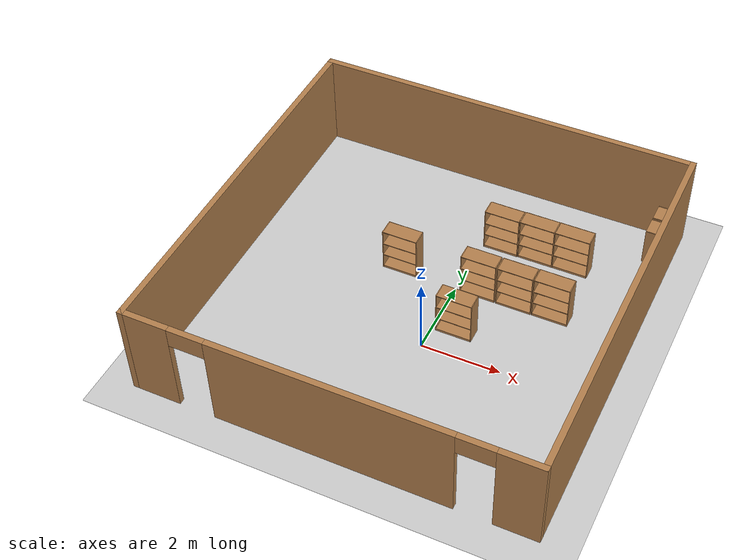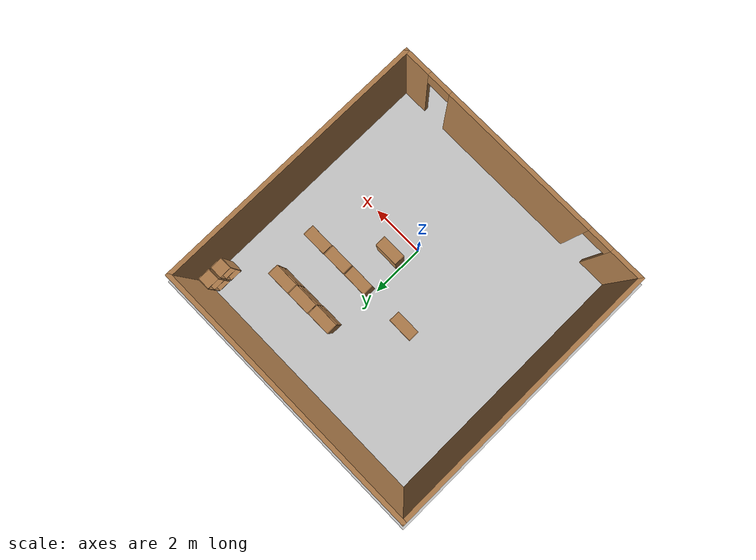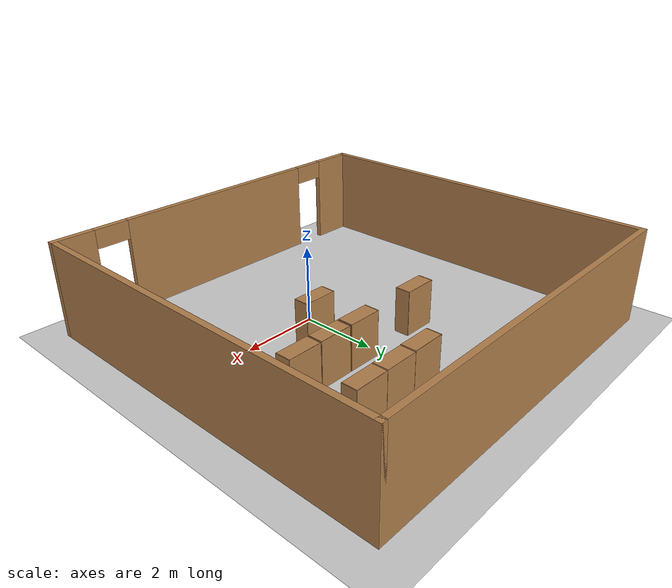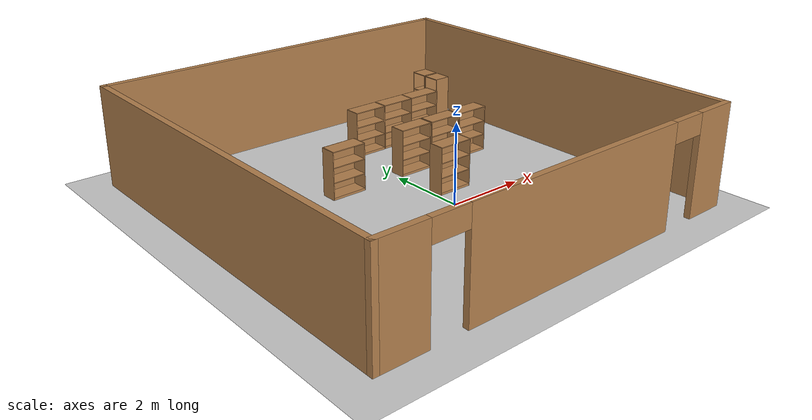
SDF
<sdf version="1.7">
 <world name="default">
  <model name="ground_plane">
   <static>1</static>
   <link name="link">
    <collision name="collision">
     <geometry><plane><normal>0 0 1</normal><size>100 100</size></plane></geometry>
     <surface>
      <contact><collide_bitmask>65535</collide_bitmask></contact>
      <friction><ode><mu>100</mu><mu2>50</mu2></ode></friction>
     </surface>
    </collision>
    <visual name="visual">
     <cast_shadows>0</cast_shadows>
     <geometry><plane><normal>0 0 1</normal><size>100 100</size></plane></geometry>
     <material>
      <script><uri>file://media/materials/scripts/gazebo.material</uri><name>Gazebo/Grey</name></script>
     </material>
    </visual>
   </link>
  </model>
  <model name="test">
   <pose>-0.47841 1.11325 0 0 -0 0</pose>
   <link name="Wall_13">
    <collision name="Wall_13_Collision">
     <geometry><box><size>10 0.15 2.5</size></box></geometry>
     <pose>0 0 1.25 0 -0 0</pose>
    </collision>
    <visual name="Wall_13_Visual">
     <pose>0 0 1.25 0 -0 0</pose>
     <geometry><box><size>10 0.15 2.5</size></box></geometry>
     <material>
      <script><uri>file://media/materials/scripts/gazebo.material</uri><name>Gazebo/Wood</name></script>
      <ambient>1 1 1 1</ambient>
     </material>
     <meta><layer>0</layer></meta>
    </visual>
    <pose>0 4.925 0 0 -0 0</pose>
   </link>
   <link name="Wall_14">
    <collision name="Wall_14_Collision">
     <geometry><box><size>10 0.15 2.5</size></box></geometry>
     <pose>0 0 1.25 0 -0 0</pose>
    </collision>
    <visual name="Wall_14_Visual">
     <pose>0 0 1.25 0 -0 0</pose>
     <geometry><box><size>10 0.15 2.5</size></box></geometry>
     <material>
      <script><uri>file://media/materials/scripts/gazebo.material</uri><name>Gazebo/Wood</name></script>
      <ambient>1 1 1 1</ambient>
     </material>
     <meta><layer>0</layer></meta>
    </visual>
    <pose>4.925 -0 0 0 -0 -1.5708</pose>
   </link>
   <link name="Wall_17">
    <collision name="Wall_17_Collision">
     <geometry><box><size>10 0.15 2.5</size></box></geometry>
     <pose>0 0 1.25 0 -0 0</pose>
    </collision>
    <visual name="Wall_17_Visual">
     <pose>0 0 1.25 0 -0 0</pose>
     <geometry><box><size>10 0.15 2.5</size></box></geometry>
     <material>
      <script><uri>file://media/materials/scripts/gazebo.material</uri><name>Gazebo/Wood</name></script>
      <ambient>1 1 1 1</ambient>
     </material>
     <meta><layer>0</layer></meta>
    </visual>
    <pose>-4.925 -0 0 0 -0 1.5708</pose>
   </link>
   <link name="Wall_5">
    <pose>0 -4.925 0 0 -0 3.14159</pose>
    <visual name="Wall_5_Visual_0">
     <pose>-4.45546 0 1.25 0 -0 0</pose>
     <geometry><box><size>1.08909 0.15 2.5</size></box></geometry>
     <material>
      <script><uri>file://media/materials/scripts/gazebo.material</uri><name>Gazebo/Wood</name></script>
      <ambient>1 1 1 1</ambient>
     </material>
     <meta><layer>0</layer></meta>
    </visual>
    <collision name="Wall_5_Collision_0">
     <geometry><box><size>1.08909 0.15 2.5</size></box></geometry>
     <pose>-4.45546 0 1.25 0 -0 0</pose>
    </collision>
    <visual name="Wall_5_Visual_1">
     <pose>-0.081777 0 1.25 0 -0 0</pose>
     <geometry><box><size>5.85827 0.15 2.5</size></box></geometry>
     <material>
      <script><uri>file://media/materials/scripts/gazebo.material</uri><name>Gazebo/Wood</name></script>
      <ambient>1 1 1 1</ambient>
     </material>
     <meta><layer>0</layer></meta>
    </visual>
    <collision name="Wall_5_Collision_1">
     <geometry><box><size>5.85827 0.15 2.5</size></box></geometry>
     <pose>-0.081777 0 1.25 0 -0 0</pose>
    </collision>
    <visual name="Wall_5_Visual_2">
     <pose>4.37368 0 1.25 0 -0 0</pose>
     <geometry><box><size>1.25264 0.15 2.5</size></box></geometry>
     <material>
      <script><uri>file://media/materials/scripts/gazebo.material</uri><name>Gazebo/Wood</name></script>
      <ambient>1 1 1 1</ambient>
     </material>
     <meta><layer>0</layer></meta>
    </visual>
    <collision name="Wall_5_Collision_2">
     <geometry><box><size>1.25264 0.15 2.5</size></box></geometry>
     <pose>4.37368 0 1.25 0 -0 0</pose>
    </collision>
    <visual name="Wall_5_Visual_3">
     <pose>-3.46091 0 2.25 0 -0 0</pose>
     <geometry><box><size>0.9 0.15 0.5</size></box></geometry>
     <material>
      <script><uri>file://media/materials/scripts/gazebo.material</uri><name>Gazebo/Wood</name></script>
      <ambient>1 1 1 1</ambient>
     </material>
     <meta><layer>0</layer></meta>
    </visual>
    <collision name="Wall_5_Collision_3">
     <geometry><box><size>0.9 0.15 0.5</size></box></geometry>
     <pose>-3.46091 0 2.25 0 -0 0</pose>
    </collision>
    <visual name="Wall_5_Visual_4">
     <pose>3.29736 0 2.25 0 -0 0</pose>
     <geometry><box><size>0.9 0.15 0.5</size></box></geometry>
     <material>
      <script><uri>file://media/materials/scripts/gazebo.material</uri><name>Gazebo/Wood</name></script>
      <ambient>1 1 1 1</ambient>
     </material>
     <meta><layer>0</layer></meta>
    </visual>
    <collision name="Wall_5_Collision_4">
     <geometry><box><size>0.9 0.15 0.5</size></box></geometry>
     <pose>3.29736 0 2.25 0 -0 0</pose>
    </collision>
   </link>
   <static>1</static>
  </model>
  <model name="bookshelf_2">
   <static>1</static>
   <link name="link">
    <inertial><mass>1</mass></inertial>
    <collision name="back">
     <pose>0 0.005 0.6 0 -0 0</pose>
     <geometry><box><size>0.9 0.01 1.2</size></box></geometry>
    </collision>
    <visual name="visual1">
     <pose>0 0.005 0.6 0 -0 0</pose>
     <geometry><box><size>0.9 0.01 1.2</size></box></geometry>
     <material>
      <script><uri>file://media/materials/scripts/gazebo.material</uri><name>Gazebo/Wood</name></script>
     </material>
    </visual>
    <collision name="left_side">
     <pose>0.45 -0.195 0.6 0 -0 0</pose>
     <geometry><box><size>0.02 0.4 1.2</size></box></geometry>
    </collision>
    <visual name="visual2">
     <pose>0.45 -0.195 0.6 0 -0 0</pose>
     <geometry><box><size>0.02 0.4 1.2</size></box></geometry>
     <material>
      <script><uri>file://media/materials/scripts/gazebo.material</uri><name>Gazebo/Wood</name></script>
     </material>
    </visual>
    <collision name="right_side">
     <pose>-0.45 -0.195 0.6 0 -0 0</pose>
     <geometry><box><size>0.02 0.4 1.2</size></box></geometry>
    </collision>
    <visual name="visual3">
     <pose>-0.45 -0.195 0.6 0 -0 0</pose>
     <geometry><box><size>0.02 0.4 1.2</size></box></geometry>
     <material>
      <script><uri>file://media/materials/scripts/gazebo.material</uri><name>Gazebo/Wood</name></script>
     </material>
    </visual>
    <collision name="bottom">
     <pose>0 -0.195 0.03 0 -0 0</pose>
     <geometry><box><size>0.88 0.4 0.06</size></box></geometry>
    </collision>
    <visual name="visual4">
     <pose>0 -0.195 0.03 0 -0 0</pose>
     <geometry><box><size>0.88 0.4 0.06</size></box></geometry>
     <material>
      <script><uri>file://media/materials/scripts/gazebo.material</uri><name>Gazebo/Wood</name></script>
     </material>
    </visual>
    <collision name="top">
     <pose>0 -0.195 1.19 0 -0 0</pose>
     <geometry><box><size>0.88 0.4 0.02</size></box></geometry>
    </collision>
    <visual name="visual5">
     <pose>0 -0.195 1.19 0 -0 0</pose>
     <geometry><box><size>0.88 0.4 0.02</size></box></geometry>
     <material>
      <script><uri>file://media/materials/scripts/gazebo.material</uri><name>Gazebo/Wood</name></script>
     </material>
    </visual>
    <collision name="low_shelf">
     <pose>0 -0.195 0.43 0 -0 0</pose>
     <geometry><box><size>0.88 0.4 0.02</size></box></geometry>
    </collision>
    <visual name="visual6">
     <pose>0 -0.195 0.43 0 -0 0</pose>
     <geometry><box><size>0.88 0.4 0.02</size></box></geometry>
     <material>
      <script><uri>file://media/materials/scripts/gazebo.material</uri><name>Gazebo/Wood</name></script>
     </material>
    </visual>
    <collision name="high_shelf">
     <pose>0 -0.195 0.8 0 -0 0</pose>
     <geometry><box><size>0.88 0.4 0.02</size></box></geometry>
    </collision>
    <visual name="visual7">
     <pose>0 -0.195 0.8 0 -0 0</pose>
     <geometry><box><size>0.88 0.4 0.02</size></box></geometry>
     <material>
      <script><uri>file://media/materials/scripts/gazebo.material</uri><name>Gazebo/Wood</name></script>
     </material>
    </visual>
   </link>
   <pose>0.490142 4.07229 0 0 -0 0</pose>
  </model>
  <model name="bookshelf_3">
   <static>1</static>
   <link name="link">
    <inertial><mass>1</mass></inertial>
    <collision name="back">
     <pose>0 0.005 0.6 0 -0 0</pose>
     <geometry><box><size>0.9 0.01 1.2</size></box></geometry>
    </collision>
    <visual name="visual1">
     <pose>0 0.005 0.6 0 -0 0</pose>
     <geometry><box><size>0.9 0.01 1.2</size></box></geometry>
     <material>
      <script><uri>file://media/materials/scripts/gazebo.material</uri><name>Gazebo/Wood</name></script>
     </material>
    </visual>
    <collision name="left_side">
     <pose>0.45 -0.195 0.6 0 -0 0</pose>
     <geometry><box><size>0.02 0.4 1.2</size></box></geometry>
    </collision>
    <visual name="visual2">
     <pose>0.45 -0.195 0.6 0 -0 0</pose>
     <geometry><box><size>0.02 0.4 1.2</size></box></geometry>
     <material>
      <script><uri>file://media/materials/scripts/gazebo.material</uri><name>Gazebo/Wood</name></script>
     </material>
    </visual>
    <collision name="right_side">
     <pose>-0.45 -0.195 0.6 0 -0 0</pose>
     <geometry><box><size>0.02 0.4 1.2</size></box></geometry>
    </collision>
    <visual name="visual3">
     <pose>-0.45 -0.195 0.6 0 -0 0</pose>
     <geometry><box><size>0.02 0.4 1.2</size></box></geometry>
     <material>
      <script><uri>file://media/materials/scripts/gazebo.material</uri><name>Gazebo/Wood</name></script>
     </material>
    </visual>
    <collision name="bottom">
     <pose>0 -0.195 0.03 0 -0 0</pose>
     <geometry><box><size>0.88 0.4 0.06</size></box></geometry>
    </collision>
    <visual name="visual4">
     <pose>0 -0.195 0.03 0 -0 0</pose>
     <geometry><box><size>0.88 0.4 0.06</size></box></geometry>
     <material>
      <script><uri>file://media/materials/scripts/gazebo.material</uri><name>Gazebo/Wood</name></script>
     </material>
    </visual>
    <collision name="top">
     <pose>0 -0.195 1.19 0 -0 0</pose>
     <geometry><box><size>0.88 0.4 0.02</size></box></geometry>
    </collision>
    <visual name="visual5">
     <pose>0 -0.195 1.19 0 -0 0</pose>
     <geometry><box><size>0.88 0.4 0.02</size></box></geometry>
     <material>
      <script><uri>file://media/materials/scripts/gazebo.material</uri><name>Gazebo/Wood</name></script>
     </material>
    </visual>
    <collision name="low_shelf">
     <pose>0 -0.195 0.43 0 -0 0</pose>
     <geometry><box><size>0.88 0.4 0.02</size></box></geometry>
    </collision>
    <visual name="visual6">
     <pose>0 -0.195 0.43 0 -0 0</pose>
     <geometry><box><size>0.88 0.4 0.02</size></box></geometry>
     <material>
      <script><uri>file://media/materials/scripts/gazebo.material</uri><name>Gazebo/Wood</name></script>
     </material>
    </visual>
    <collision name="high_shelf">
     <pose>0 -0.195 0.8 0 -0 0</pose>
     <geometry><box><size>0.88 0.4 0.02</size></box></geometry>
    </collision>
    <visual name="visual7">
     <pose>0 -0.195 0.8 0 -0 0</pose>
     <geometry><box><size>0.88 0.4 0.02</size></box></geometry>
     <material>
      <script><uri>file://media/materials/scripts/gazebo.material</uri><name>Gazebo/Wood</name></script>
     </material>
    </visual>
   </link>
   <pose>1.41244 4.08469 0 0 -0 0</pose>
  </model>
  <model name="bookshelf_4">
   <static>1</static>
   <link name="link">
    <inertial><mass>1</mass></inertial>
    <collision name="back">
     <pose>0 0.005 0.6 0 -0 0</pose>
     <geometry><box><size>0.9 0.01 1.2</size></box></geometry>
    </collision>
    <visual name="visual1">
     <pose>0 0.005 0.6 0 -0 0</pose>
     <geometry><box><size>0.9 0.01 1.2</size></box></geometry>
     <material>
      <script><uri>file://media/materials/scripts/gazebo.material</uri><name>Gazebo/Wood</name></script>
     </material>
    </visual>
    <collision name="left_side">
     <pose>0.45 -0.195 0.6 0 -0 0</pose>
     <geometry><box><size>0.02 0.4 1.2</size></box></geometry>
    </collision>
    <visual name="visual2">
     <pose>0.45 -0.195 0.6 0 -0 0</pose>
     <geometry><box><size>0.02 0.4 1.2</size></box></geometry>
     <material>
      <script><uri>file://media/materials/scripts/gazebo.material</uri><name>Gazebo/Wood</name></script>
     </material>
    </visual>
    <collision name="right_side">
     <pose>-0.45 -0.195 0.6 0 -0 0</pose>
     <geometry><box><size>0.02 0.4 1.2</size></box></geometry>
    </collision>
    <visual name="visual3">
     <pose>-0.45 -0.195 0.6 0 -0 0</pose>
     <geometry><box><size>0.02 0.4 1.2</size></box></geometry>
     <material>
      <script><uri>file://media/materials/scripts/gazebo.material</uri><name>Gazebo/Wood</name></script>
     </material>
    </visual>
    <collision name="bottom">
     <pose>0 -0.195 0.03 0 -0 0</pose>
     <geometry><box><size>0.88 0.4 0.06</size></box></geometry>
    </collision>
    <visual name="visual4">
     <pose>0 -0.195 0.03 0 -0 0</pose>
     <geometry><box><size>0.88 0.4 0.06</size></box></geometry>
     <material>
      <script><uri>file://media/materials/scripts/gazebo.material</uri><name>Gazebo/Wood</name></script>
     </material>
    </visual>
    <collision name="top">
     <pose>0 -0.195 1.19 0 -0 0</pose>
     <geometry><box><size>0.88 0.4 0.02</size></box></geometry>
    </collision>
    <visual name="visual5">
     <pose>0 -0.195 1.19 0 -0 0</pose>
     <geometry><box><size>0.88 0.4 0.02</size></box></geometry>
     <material>
      <script><uri>file://media/materials/scripts/gazebo.material</uri><name>Gazebo/Wood</name></script>
     </material>
    </visual>
    <collision name="low_shelf">
     <pose>0 -0.195 0.43 0 -0 0</pose>
     <geometry><box><size>0.88 0.4 0.02</size></box></geometry>
    </collision>
    <visual name="visual6">
     <pose>0 -0.195 0.43 0 -0 0</pose>
     <geometry><box><size>0.88 0.4 0.02</size></box></geometry>
     <material>
      <script><uri>file://media/materials/scripts/gazebo.material</uri><name>Gazebo/Wood</name></script>
     </material>
    </visual>
    <collision name="high_shelf">
     <pose>0 -0.195 0.8 0 -0 0</pose>
     <geometry><box><size>0.88 0.4 0.02</size></box></geometry>
    </collision>
    <visual name="visual7">
     <pose>0 -0.195 0.8 0 -0 0</pose>
     <geometry><box><size>0.88 0.4 0.02</size></box></geometry>
     <material>
      <script><uri>file://media/materials/scripts/gazebo.material</uri><name>Gazebo/Wood</name></script>
     </material>
    </visual>
   </link>
   <pose>2.32485 4.08963 0 0 -0 0</pose>
  </model>
  <model name="bookshelf_5">
   <static>1</static>
   <link name="link">
    <inertial><mass>1</mass></inertial>
    <collision name="back">
     <pose>0 0.005 0.6 0 -0 0</pose>
     <geometry><box><size>0.9 0.01 1.2</size></box></geometry>
    </collision>
    <visual name="visual1">
     <pose>0 0.005 0.6 0 -0 0</pose>
     <geometry><box><size>0.9 0.01 1.2</size></box></geometry>
     <material>
      <script><uri>file://media/materials/scripts/gazebo.material</uri><name>Gazebo/Wood</name></script>
     </material>
    </visual>
    <collision name="left_side">
     <pose>0.45 -0.195 0.6 0 -0 0</pose>
     <geometry><box><size>0.02 0.4 1.2</size></box></geometry>
    </collision>
    <visual name="visual2">
     <pose>0.45 -0.195 0.6 0 -0 0</pose>
     <geometry><box><size>0.02 0.4 1.2</size></box></geometry>
     <material>
      <script><uri>file://media/materials/scripts/gazebo.material</uri><name>Gazebo/Wood</name></script>
     </material>
    </visual>
    <collision name="right_side">
     <pose>-0.45 -0.195 0.6 0 -0 0</pose>
     <geometry><box><size>0.02 0.4 1.2</size></box></geometry>
    </collision>
    <visual name="visual3">
     <pose>-0.45 -0.195 0.6 0 -0 0</pose>
     <geometry><box><size>0.02 0.4 1.2</size></box></geometry>
     <material>
      <script><uri>file://media/materials/scripts/gazebo.material</uri><name>Gazebo/Wood</name></script>
     </material>
    </visual>
    <collision name="bottom">
     <pose>0 -0.195 0.03 0 -0 0</pose>
     <geometry><box><size>0.88 0.4 0.06</size></box></geometry>
    </collision>
    <visual name="visual4">
     <pose>0 -0.195 0.03 0 -0 0</pose>
     <geometry><box><size>0.88 0.4 0.06</size></box></geometry>
     <material>
      <script><uri>file://media/materials/scripts/gazebo.material</uri><name>Gazebo/Wood</name></script>
     </material>
    </visual>
    <collision name="top">
     <pose>0 -0.195 1.19 0 -0 0</pose>
     <geometry><box><size>0.88 0.4 0.02</size></box></geometry>
    </collision>
    <visual name="visual5">
     <pose>0 -0.195 1.19 0 -0 0</pose>
     <geometry><box><size>0.88 0.4 0.02</size></box></geometry>
     <material>
      <script><uri>file://media/materials/scripts/gazebo.material</uri><name>Gazebo/Wood</name></script>
     </material>
    </visual>
    <collision name="low_shelf">
     <pose>0 -0.195 0.43 0 -0 0</pose>
     <geometry><box><size>0.88 0.4 0.02</size></box></geometry>
    </collision>
    <visual name="visual6">
     <pose>0 -0.195 0.43 0 -0 0</pose>
     <geometry><box><size>0.88 0.4 0.02</size></box></geometry>
     <material>
      <script><uri>file://media/materials/scripts/gazebo.material</uri><name>Gazebo/Wood</name></script>
     </material>
    </visual>
    <collision name="high_shelf">
     <pose>0 -0.195 0.8 0 -0 0</pose>
     <geometry><box><size>0.88 0.4 0.02</size></box></geometry>
    </collision>
    <visual name="visual7">
     <pose>0 -0.195 0.8 0 -0 0</pose>
     <geometry><box><size>0.88 0.4 0.02</size></box></geometry>
     <material>
      <script><uri>file://media/materials/scripts/gazebo.material</uri><name>Gazebo/Wood</name></script>
     </material>
    </visual>
   </link>
   <pose>2.45061 2.38707 0 0 -0 0</pose>
  </model>
  <model name="bookshelf_6">
   <static>1</static>
   <link name="link">
    <inertial><mass>1</mass></inertial>
    <collision name="back">
     <pose>0 0.005 0.6 0 -0 0</pose>
     <geometry><box><size>0.9 0.01 1.2</size></box></geometry>
    </collision>
    <visual name="visual1">
     <pose>0 0.005 0.6 0 -0 0</pose>
     <geometry><box><size>0.9 0.01 1.2</size></box></geometry>
     <material>
      <script><uri>file://media/materials/scripts/gazebo.material</uri><name>Gazebo/Wood</name></script>
     </material>
    </visual>
    <collision name="left_side">
     <pose>0.45 -0.195 0.6 0 -0 0</pose>
     <geometry><box><size>0.02 0.4 1.2</size></box></geometry>
    </collision>
    <visual name="visual2">
     <pose>0.45 -0.195 0.6 0 -0 0</pose>
     <geometry><box><size>0.02 0.4 1.2</size></box></geometry>
     <material>
      <script><uri>file://media/materials/scripts/gazebo.material</uri><name>Gazebo/Wood</name></script>
     </material>
    </visual>
    <collision name="right_side">
     <pose>-0.45 -0.195 0.6 0 -0 0</pose>
     <geometry><box><size>0.02 0.4 1.2</size></box></geometry>
    </collision>
    <visual name="visual3">
     <pose>-0.45 -0.195 0.6 0 -0 0</pose>
     <geometry><box><size>0.02 0.4 1.2</size></box></geometry>
     <material>
      <script><uri>file://media/materials/scripts/gazebo.material</uri><name>Gazebo/Wood</name></script>
     </material>
    </visual>
    <collision name="bottom">
     <pose>0 -0.195 0.03 0 -0 0</pose>
     <geometry><box><size>0.88 0.4 0.06</size></box></geometry>
    </collision>
    <visual name="visual4">
     <pose>0 -0.195 0.03 0 -0 0</pose>
     <geometry><box><size>0.88 0.4 0.06</size></box></geometry>
     <material>
      <script><uri>file://media/materials/scripts/gazebo.material</uri><name>Gazebo/Wood</name></script>
     </material>
    </visual>
    <collision name="top">
     <pose>0 -0.195 1.19 0 -0 0</pose>
     <geometry><box><size>0.88 0.4 0.02</size></box></geometry>
    </collision>
    <visual name="visual5">
     <pose>0 -0.195 1.19 0 -0 0</pose>
     <geometry><box><size>0.88 0.4 0.02</size></box></geometry>
     <material>
      <script><uri>file://media/materials/scripts/gazebo.material</uri><name>Gazebo/Wood</name></script>
     </material>
    </visual>
    <collision name="low_shelf">
     <pose>0 -0.195 0.43 0 -0 0</pose>
     <geometry><box><size>0.88 0.4 0.02</size></box></geometry>
    </collision>
    <visual name="visual6">
     <pose>0 -0.195 0.43 0 -0 0</pose>
     <geometry><box><size>0.88 0.4 0.02</size></box></geometry>
     <material>
      <script><uri>file://media/materials/scripts/gazebo.material</uri><name>Gazebo/Wood</name></script>
     </material>
    </visual>
    <collision name="high_shelf">
     <pose>0 -0.195 0.8 0 -0 0</pose>
     <geometry><box><size>0.88 0.4 0.02</size></box></geometry>
    </collision>
    <visual name="visual7">
     <pose>0 -0.195 0.8 0 -0 0</pose>
     <geometry><box><size>0.88 0.4 0.02</size></box></geometry>
     <material>
      <script><uri>file://media/materials/scripts/gazebo.material</uri><name>Gazebo/Wood</name></script>
     </material>
    </visual>
   </link>
   <pose>1.51879 2.37897 0 0 -0 0</pose>
  </model>
  <model name="bookshelf_7">
   <static>1</static>
   <link name="link">
    <inertial><mass>1</mass></inertial>
    <collision name="back">
     <pose>0 0.005 0.6 0 -0 0</pose>
     <geometry><box><size>0.9 0.01 1.2</size></box></geometry>
    </collision>
    <visual name="visual1">
     <pose>0 0.005 0.6 0 -0 0</pose>
     <geometry><box><size>0.9 0.01 1.2</size></box></geometry>
     <material>
      <script><uri>file://media/materials/scripts/gazebo.material</uri><name>Gazebo/Wood</name></script>
     </material>
    </visual>
    <collision name="left_side">
     <pose>0.45 -0.195 0.6 0 -0 0</pose>
     <geometry><box><size>0.02 0.4 1.2</size></box></geometry>
    </collision>
    <visual name="visual2">
     <pose>0.45 -0.195 0.6 0 -0 0</pose>
     <geometry><box><size>0.02 0.4 1.2</size></box></geometry>
     <material>
      <script><uri>file://media/materials/scripts/gazebo.material</uri><name>Gazebo/Wood</name></script>
     </material>
    </visual>
    <collision name="right_side">
     <pose>-0.45 -0.195 0.6 0 -0 0</pose>
     <geometry><box><size>0.02 0.4 1.2</size></box></geometry>
    </collision>
    <visual name="visual3">
     <pose>-0.45 -0.195 0.6 0 -0 0</pose>
     <geometry><box><size>0.02 0.4 1.2</size></box></geometry>
     <material>
      <script><uri>file://media/materials/scripts/gazebo.material</uri><name>Gazebo/Wood</name></script>
     </material>
    </visual>
    <collision name="bottom">
     <pose>0 -0.195 0.03 0 -0 0</pose>
     <geometry><box><size>0.88 0.4 0.06</size></box></geometry>
    </collision>
    <visual name="visual4">
     <pose>0 -0.195 0.03 0 -0 0</pose>
     <geometry><box><size>0.88 0.4 0.06</size></box></geometry>
     <material>
      <script><uri>file://media/materials/scripts/gazebo.material</uri><name>Gazebo/Wood</name></script>
     </material>
    </visual>
    <collision name="top">
     <pose>0 -0.195 1.19 0 -0 0</pose>
     <geometry><box><size>0.88 0.4 0.02</size></box></geometry>
    </collision>
    <visual name="visual5">
     <pose>0 -0.195 1.19 0 -0 0</pose>
     <geometry><box><size>0.88 0.4 0.02</size></box></geometry>
     <material>
      <script><uri>file://media/materials/scripts/gazebo.material</uri><name>Gazebo/Wood</name></script>
     </material>
    </visual>
    <collision name="low_shelf">
     <pose>0 -0.195 0.43 0 -0 0</pose>
     <geometry><box><size>0.88 0.4 0.02</size></box></geometry>
    </collision>
    <visual name="visual6">
     <pose>0 -0.195 0.43 0 -0 0</pose>
     <geometry><box><size>0.88 0.4 0.02</size></box></geometry>
     <material>
      <script><uri>file://media/materials/scripts/gazebo.material</uri><name>Gazebo/Wood</name></script>
     </material>
    </visual>
    <collision name="high_shelf">
     <pose>0 -0.195 0.8 0 -0 0</pose>
     <geometry><box><size>0.88 0.4 0.02</size></box></geometry>
    </collision>
    <visual name="visual7">
     <pose>0 -0.195 0.8 0 -0 0</pose>
     <geometry><box><size>0.88 0.4 0.02</size></box></geometry>
     <material>
      <script><uri>file://media/materials/scripts/gazebo.material</uri><name>Gazebo/Wood</name></script>
     </material>
    </visual>
   </link>
   <pose>0.574777 2.38083 0 0 -0 0</pose>
  </model>
  <model name="bookshelf_8">
   <static>1</static>
   <link name="link">
    <inertial><mass>1</mass></inertial>
    <collision name="back">
     <pose>0 0.005 0.6 0 -0 0</pose>
     <geometry><box><size>0.9 0.01 1.2</size></box></geometry>
    </collision>
    <visual name="visual1">
     <pose>0 0.005 0.6 0 -0 0</pose>
     <geometry><box><size>0.9 0.01 1.2</size></box></geometry>
     <material>
      <script><uri>file://media/materials/scripts/gazebo.material</uri><name>Gazebo/Wood</name></script>
     </material>
    </visual>
    <collision name="left_side">
     <pose>0.45 -0.195 0.6 0 -0 0</pose>
     <geometry><box><size>0.02 0.4 1.2</size></box></geometry>
    </collision>
    <visual name="visual2">
     <pose>0.45 -0.195 0.6 0 -0 0</pose>
     <geometry><box><size>0.02 0.4 1.2</size></box></geometry>
     <material>
      <script><uri>file://media/materials/scripts/gazebo.material</uri><name>Gazebo/Wood</name></script>
     </material>
    </visual>
    <collision name="right_side">
     <pose>-0.45 -0.195 0.6 0 -0 0</pose>
     <geometry><box><size>0.02 0.4 1.2</size></box></geometry>
    </collision>
    <visual name="visual3">
     <pose>-0.45 -0.195 0.6 0 -0 0</pose>
     <geometry><box><size>0.02 0.4 1.2</size></box></geometry>
     <material>
      <script><uri>file://media/materials/scripts/gazebo.material</uri><name>Gazebo/Wood</name></script>
     </material>
    </visual>
    <collision name="bottom">
     <pose>0 -0.195 0.03 0 -0 0</pose>
     <geometry><box><size>0.88 0.4 0.06</size></box></geometry>
    </collision>
    <visual name="visual4">
     <pose>0 -0.195 0.03 0 -0 0</pose>
     <geometry><box><size>0.88 0.4 0.06</size></box></geometry>
     <material>
      <script><uri>file://media/materials/scripts/gazebo.material</uri><name>Gazebo/Wood</name></script>
     </material>
    </visual>
    <collision name="top">
     <pose>0 -0.195 1.19 0 -0 0</pose>
     <geometry><box><size>0.88 0.4 0.02</size></box></geometry>
    </collision>
    <visual name="visual5">
     <pose>0 -0.195 1.19 0 -0 0</pose>
     <geometry><box><size>0.88 0.4 0.02</size></box></geometry>
     <material>
      <script><uri>file://media/materials/scripts/gazebo.material</uri><name>Gazebo/Wood</name></script>
     </material>
    </visual>
    <collision name="low_shelf">
     <pose>0 -0.195 0.43 0 -0 0</pose>
     <geometry><box><size>0.88 0.4 0.02</size></box></geometry>
    </collision>
    <visual name="visual6">
     <pose>0 -0.195 0.43 0 -0 0</pose>
     <geometry><box><size>0.88 0.4 0.02</size></box></geometry>
     <material>
      <script><uri>file://media/materials/scripts/gazebo.material</uri><name>Gazebo/Wood</name></script>
     </material>
    </visual>
    <collision name="high_shelf">
     <pose>0 -0.195 0.8 0 -0 0</pose>
     <geometry><box><size>0.88 0.4 0.02</size></box></geometry>
    </collision>
    <visual name="visual7">
     <pose>0 -0.195 0.8 0 -0 0</pose>
     <geometry><box><size>0.88 0.4 0.02</size></box></geometry>
     <material>
      <script><uri>file://media/materials/scripts/gazebo.material</uri><name>Gazebo/Wood</name></script>
     </material>
    </visual>
   </link>
   <pose>-1.50236 2.36105 0 0 -0 0</pose>
  </model>
  <model name="bookshelf_14">
   <static>1</static>
   <link name="link">
    <inertial><mass>1</mass></inertial>
    <collision name="back">
     <pose>0 0.005 0.6 0 -0 0</pose>
     <geometry><box><size>0.9 0.01 1.2</size></box></geometry>
    </collision>
    <visual name="visual1">
     <pose>0 0.005 0.6 0 -0 0</pose>
     <geometry><box><size>0.9 0.01 1.2</size></box></geometry>
     <material>
      <script><uri>file://media/materials/scripts/gazebo.material</uri><name>Gazebo/Wood</name></script>
     </material>
    </visual>
    <collision name="left_side">
     <pose>0.45 -0.195 0.6 0 -0 0</pose>
     <geometry><box><size>0.02 0.4 1.2</size></box></geometry>
    </collision>
    <visual name="visual2">
     <pose>0.45 -0.195 0.6 0 -0 0</pose>
     <geometry><box><size>0.02 0.4 1.2</size></box></geometry>
     <material>
      <script><uri>file://media/materials/scripts/gazebo.material</uri><name>Gazebo/Wood</name></script>
     </material>
    </visual>
    <collision name="right_side">
     <pose>-0.45 -0.195 0.6 0 -0 0</pose>
     <geometry><box><size>0.02 0.4 1.2</size></box></geometry>
    </collision>
    <visual name="visual3">
     <pose>-0.45 -0.195 0.6 0 -0 0</pose>
     <geometry><box><size>0.02 0.4 1.2</size></box></geometry>
     <material>
      <script><uri>file://media/materials/scripts/gazebo.material</uri><name>Gazebo/Wood</name></script>
     </material>
    </visual>
    <collision name="bottom">
     <pose>0 -0.195 0.03 0 -0 0</pose>
     <geometry><box><size>0.88 0.4 0.06</size></box></geometry>
    </collision>
    <visual name="visual4">
     <pose>0 -0.195 0.03 0 -0 0</pose>
     <geometry><box><size>0.88 0.4 0.06</size></box></geometry>
     <material>
      <script><uri>file://media/materials/scripts/gazebo.material</uri><name>Gazebo/Wood</name></script>
     </material>
    </visual>
    <collision name="top">
     <pose>0 -0.195 1.19 0 -0 0</pose>
     <geometry><box><size>0.88 0.4 0.02</size></box></geometry>
    </collision>
    <visual name="visual5">
     <pose>0 -0.195 1.19 0 -0 0</pose>
     <geometry><box><size>0.88 0.4 0.02</size></box></geometry>
     <material>
      <script><uri>file://media/materials/scripts/gazebo.material</uri><name>Gazebo/Wood</name></script>
     </material>
    </visual>
    <collision name="low_shelf">
     <pose>0 -0.195 0.43 0 -0 0</pose>
     <geometry><box><size>0.88 0.4 0.02</size></box></geometry>
    </collision>
    <visual name="visual6">
     <pose>0 -0.195 0.43 0 -0 0</pose>
     <geometry><box><size>0.88 0.4 0.02</size></box></geometry>
     <material>
      <script><uri>file://media/materials/scripts/gazebo.material</uri><name>Gazebo/Wood</name></script>
     </material>
    </visual>
    <collision name="high_shelf">
     <pose>0 -0.195 0.8 0 -0 0</pose>
     <geometry><box><size>0.88 0.4 0.02</size></box></geometry>
    </collision>
    <visual name="visual7">
     <pose>0 -0.195 0.8 0 -0 0</pose>
     <geometry><box><size>0.88 0.4 0.02</size></box></geometry>
     <material>
      <script><uri>file://media/materials/scripts/gazebo.material</uri><name>Gazebo/Wood</name></script>
     </material>
    </visual>
   </link>
   <pose>0.555802 0.970865 0 0 -0 0</pose>
  </model>
  <model name="cabinet">
   <static>1</static>
   <link name="cabinet_bottom_plate">
    <inertial>
     <pose>0 0 -1 0 -0 0</pose>
     <inertia><ixx>2.05</ixx><ixy>0</ixy><ixz>0</ixz><iyy>2.05</iyy><iyz>0</iyz><izz>2.05</izz></inertia>
     <mass>25</mass>
    </inertial>
    <collision name="cabinet_bottom_plate_geom">
     <pose>0 0 0.01 0 -0 0</pose>
     <geometry><box><size>0.45 0.45 0.02</size></box></geometry>
    </collision>
    <visual name="cabinet_bottom_plate_geom_visual">
     <pose>0 0 0.01 0 -0 0</pose>
     <geometry><box><size>0.45 0.45 0.02</size></box></geometry>
     <material>
      <script><uri>file://media/materials/scripts/gazebo.material</uri><name>Gazebo/Wood</name></script>
     </material>
    </visual>
    <collision name="cabinet_bottom_plate_geom_cabinet_back_plate">
     <pose>0.235 0 0.51 0 -0 0</pose>
     <geometry><box><size>0.02 0.45 1.02</size></box></geometry>
    </collision>
    <visual name="cabinet_bottom_plate_geom_cabinet_back_plate_visual">
     <pose>0.235 0 0.51 0 -0 0</pose>
     <geometry><box><size>0.02 0.45 1.02</size></box></geometry>
     <material>
      <script><uri>file://media/materials/scripts/gazebo.material</uri><name>Gazebo/Wood</name></script>
     </material>
    </visual>
    <collision name="cabinet_bottom_plate_geom_cabinet_left_plate">
     <pose>0 0.235 0.51 0 -0 0</pose>
     <geometry><box><size>0.45 0.02 1.02</size></box></geometry>
    </collision>
    <visual name="cabinet_bottom_plate_geom_cabinet_left_plate_visual">
     <pose>0 0.235 0.51 0 -0 0</pose>
     <geometry><box><size>0.45 0.02 1.02</size></box></geometry>
     <material>
      <script><uri>file://media/materials/scripts/gazebo.material</uri><name>Gazebo/Wood</name></script>
     </material>
    </visual>
    <collision name="cabinet_bottom_plate_geom_cabinet_middle_plate">
     <pose>0 0 0.51 0 -0 0</pose>
     <geometry><box><size>0.45 0.45 0.02</size></box></geometry>
    </collision>
    <visual name="cabinet_bottom_plate_geom_cabinet_middle_plate_visual">
     <pose>0 0 0.51 0 -0 0</pose>
     <geometry><box><size>0.45 0.45 0.02</size></box></geometry>
     <material>
      <script><uri>file://media/materials/scripts/gazebo.material</uri><name>Gazebo/Wood</name></script>
     </material>
    </visual>
    <collision name="cabinet_bottom_plate_geom_cabinet_right_plate">
     <pose>0 -0.235 0.51 0 -0 0</pose>
     <geometry><box><size>0.45 0.02 1.02</size></box></geometry>
    </collision>
    <visual name="cabinet_bottom_plate_geom_cabinet_right_plate_visual">
     <pose>0 -0.235 0.51 0 -0 0</pose>
     <geometry><box><size>0.45 0.02 1.02</size></box></geometry>
     <material>
      <script><uri>file://media/materials/scripts/gazebo.material</uri><name>Gazebo/Wood</name></script>
     </material>
    </visual>
    <collision name="cabinet_bottom_plate_geom_cabinet_top_plate">
     <pose>0 0 1.01 0 -0 0</pose>
     <geometry><box><size>0.45 0.45 0.02</size></box></geometry>
    </collision>
    <visual name="cabinet_bottom_plate_geom_cabinet_top_plate_visual">
     <pose>0 0 1.01 0 -0 0</pose>
     <geometry><box><size>0.45 0.45 0.02</size></box></geometry>
     <material>
      <script><uri>file://media/materials/scripts/gazebo.material</uri><name>Gazebo/Wood</name></script>
     </material>
    </visual>
   </link>
   <pose>4.06047 5.63287 0 0 -0 0</pose>
  </model>
  <model name="cabinet_0">
   <static>1</static>
   <link name="cabinet_bottom_plate">
    <inertial>
     <pose>0 0 -1 0 -0 0</pose>
     <inertia><ixx>2.05</ixx><ixy>0</ixy><ixz>0</ixz><iyy>2.05</iyy><iyz>0</iyz><izz>2.05</izz></inertia>
     <mass>25</mass>
    </inertial>
    <collision name="cabinet_bottom_plate_geom">
     <pose>0 0 0.01 0 -0 0</pose>
     <geometry><box><size>0.45 0.45 0.02</size></box></geometry>
    </collision>
    <visual name="cabinet_bottom_plate_geom_visual">
     <pose>0 0 0.01 0 -0 0</pose>
     <geometry><box><size>0.45 0.45 0.02</size></box></geometry>
     <material>
      <script><uri>file://media/materials/scripts/gazebo.material</uri><name>Gazebo/Wood</name></script>
     </material>
    </visual>
    <collision name="cabinet_bottom_plate_geom_cabinet_back_plate">
     <pose>0.235 0 0.51 0 -0 0</pose>
     <geometry><box><size>0.02 0.45 1.02</size></box></geometry>
    </collision>
    <visual name="cabinet_bottom_plate_geom_cabinet_back_plate_visual">
     <pose>0.235 0 0.51 0 -0 0</pose>
     <geometry><box><size>0.02 0.45 1.02</size></box></geometry>
     <material>
      <script><uri>file://media/materials/scripts/gazebo.material</uri><name>Gazebo/Wood</name></script>
     </material>
    </visual>
    <collision name="cabinet_bottom_plate_geom_cabinet_left_plate">
     <pose>0 0.235 0.51 0 -0 0</pose>
     <geometry><box><size>0.45 0.02 1.02</size></box></geometry>
    </collision>
    <visual name="cabinet_bottom_plate_geom_cabinet_left_plate_visual">
     <pose>0 0.235 0.51 0 -0 0</pose>
     <geometry><box><size>0.45 0.02 1.02</size></box></geometry>
     <material>
      <script><uri>file://media/materials/scripts/gazebo.material</uri><name>Gazebo/Wood</name></script>
     </material>
    </visual>
    <collision name="cabinet_bottom_plate_geom_cabinet_middle_plate">
     <pose>0 0 0.51 0 -0 0</pose>
     <geometry><box><size>0.45 0.45 0.02</size></box></geometry>
    </collision>
    <visual name="cabinet_bottom_plate_geom_cabinet_middle_plate_visual">
     <pose>0 0 0.51 0 -0 0</pose>
     <geometry><box><size>0.45 0.45 0.02</size></box></geometry>
     <material>
      <script><uri>file://media/materials/scripts/gazebo.material</uri><name>Gazebo/Wood</name></script>
     </material>
    </visual>
    <collision name="cabinet_bottom_plate_geom_cabinet_right_plate">
     <pose>0 -0.235 0.51 0 -0 0</pose>
     <geometry><box><size>0.45 0.02 1.02</size></box></geometry>
    </collision>
    <visual name="cabinet_bottom_plate_geom_cabinet_right_plate_visual">
     <pose>0 -0.235 0.51 0 -0 0</pose>
     <geometry><box><size>0.45 0.02 1.02</size></box></geometry>
     <material>
      <script><uri>file://media/materials/scripts/gazebo.material</uri><name>Gazebo/Wood</name></script>
     </material>
    </visual>
    <collision name="cabinet_bottom_plate_geom_cabinet_top_plate">
     <pose>0 0 1.01 0 -0 0</pose>
     <geometry><box><size>0.45 0.45 0.02</size></box></geometry>
    </collision>
    <visual name="cabinet_bottom_plate_geom_cabinet_top_plate_visual">
     <pose>0 0 1.01 0 -0 0</pose>
     <geometry><box><size>0.45 0.45 0.02</size></box></geometry>
     <material>
      <script><uri>file://media/materials/scripts/gazebo.material</uri><name>Gazebo/Wood</name></script>
     </material>
    </visual>
   </link>
   <pose>4.05407 5.10424 0 0 -0 0</pose>
  </model>
 </world>
</sdf>
